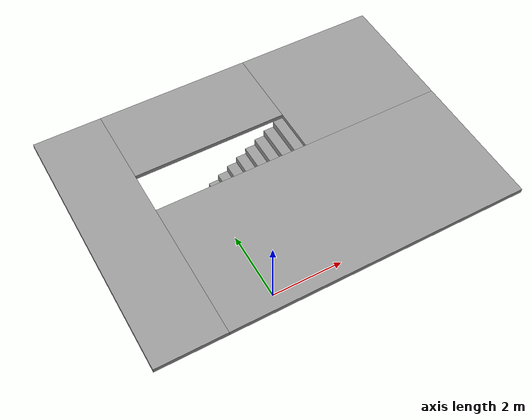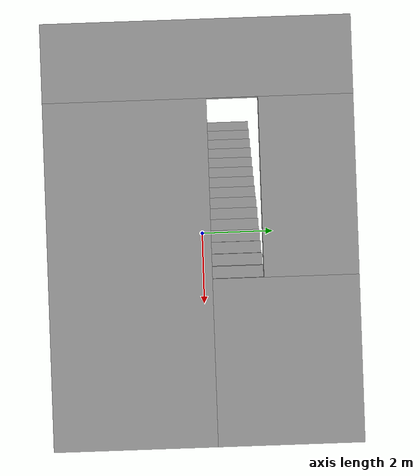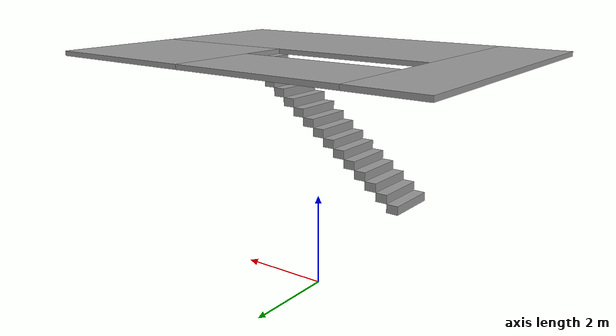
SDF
<sdf version="1.7">
 <model name="simple_building">
  <link name="Floor_2">
   <pose>0.000567 0 5 0 -0 0</pose>
   <visual name="Floor_2_Visual_0">
    <pose>-3.37689 0 0.05 0 -0 0</pose>
    <geometry><box><size>1.53518 6.02293 0.1</size></box></geometry>
    <material>
     <script><uri>file://media/materials/scripts/gazebo.material</uri><name>Gazebo/Grey</name></script>
     <ambient>1 1 1 1</ambient>
     <shader type="pixel"/>
    </material>
   </visual>
   <visual name="Floor_2_Visual_1">
    <pose>0.767592 -1.4216 0.05 0 -0 0</pose>
    <geometry><box><size>6.75378 3.17973 0.1</size></box></geometry>
    <material>
     <script><uri>file://media/materials/scripts/gazebo.material</uri><name>Gazebo/Grey</name></script>
     <ambient>1 1 1 1</ambient>
     <shader type="pixel"/>
    </material>
   </visual>
   <visual name="Floor_2_Visual_2">
    <pose>2.51759 1.58986 0.05 0 -0 0</pose>
    <geometry><box><size>3.25378 2.8432 0.1</size></box></geometry>
    <material>
     <script><uri>file://media/materials/scripts/gazebo.material</uri><name>Gazebo/Grey</name></script>
     <ambient>1 1 1 1</ambient>
     <shader type="pixel"/>
    </material>
   </visual>
   <visual name="Floor_2_Visual_3">
    <pose>-0.859299 2.08986 0.05 0 -0 0</pose>
    <geometry><box><size>3.5 1.8432 0.1</size></box></geometry>
    <material>
     <script><uri>file://media/materials/scripts/gazebo.material</uri><name>Gazebo/Grey</name></script>
     <ambient>1 1 1 1</ambient>
     <shader type="pixel"/>
    </material>
   </visual>
   <collision name="Floor_2_Collision_0">
    <pose>-3.37689 0 0.05 0 -0 0</pose>
    <geometry><box><size>1.53518 6.02293 0.1</size></box></geometry>
    <surface>
     <friction>
      <ode><mu>1</mu><mu2>1</mu2><fdir1>0 0 0</fdir1><slip1>0</slip1><slip2>0</slip2></ode>
      <torsional>
       <coefficient>1</coefficient>
       <patch_radius>0</patch_radius>
       <surface_radius>0</surface_radius>
       <use_patch_radius>1</use_patch_radius>
       <ode><slip>0</slip></ode>
      </torsional>
     </friction>
     <bounce><restitution_coefficient>0</restitution_coefficient><threshold>1e+06</threshold></bounce>
     <contact>
      <collide_without_contact>0</collide_without_contact>
      <collide_without_contact_bitmask>1</collide_without_contact_bitmask>
      <collide_bitmask>1</collide_bitmask>
      <ode>
       <soft_cfm>0</soft_cfm>
       <soft_erp>0.2</soft_erp>
       <kp>1e+13</kp>
       <kd>1</kd>
       <max_vel>0.01</max_vel>
       <min_depth>0</min_depth>
      </ode>
      <bullet>
       <split_impulse>1</split_impulse>
       <split_impulse_penetration_threshold>-0.01</split_impulse_penetration_threshold>
       <soft_cfm>0</soft_cfm>
       <soft_erp>0.2</soft_erp>
       <kp>1e+13</kp>
       <kd>1</kd>
      </bullet>
     </contact>
    </surface>
   </collision>
   <collision name="Floor_2_Collision_1">
    <pose>0.767592 -1.4216 0.05 0 -0 0</pose>
    <geometry><box><size>6.75378 3.17973 0.1</size></box></geometry>
    <surface>
     <friction>
      <ode><mu>1</mu><mu2>1</mu2><fdir1>0 0 0</fdir1><slip1>0</slip1><slip2>0</slip2></ode>
      <torsional>
       <coefficient>1</coefficient>
       <patch_radius>0</patch_radius>
       <surface_radius>0</surface_radius>
       <use_patch_radius>1</use_patch_radius>
       <ode><slip>0</slip></ode>
      </torsional>
     </friction>
     <bounce><restitution_coefficient>0</restitution_coefficient><threshold>1e+06</threshold></bounce>
     <contact>
      <collide_without_contact>0</collide_without_contact>
      <collide_without_contact_bitmask>1</collide_without_contact_bitmask>
      <collide_bitmask>1</collide_bitmask>
      <ode>
       <soft_cfm>0</soft_cfm>
       <soft_erp>0.2</soft_erp>
       <kp>1e+13</kp>
       <kd>1</kd>
       <max_vel>0.01</max_vel>
       <min_depth>0</min_depth>
      </ode>
      <bullet>
       <split_impulse>1</split_impulse>
       <split_impulse_penetration_threshold>-0.01</split_impulse_penetration_threshold>
       <soft_cfm>0</soft_cfm>
       <soft_erp>0.2</soft_erp>
       <kp>1e+13</kp>
       <kd>1</kd>
      </bullet>
     </contact>
    </surface>
   </collision>
   <collision name="Floor_2_Collision_2">
    <pose>2.51759 1.58986 0.05 0 -0 0</pose>
    <geometry><box><size>3.25378 2.8432 0.1</size></box></geometry>
    <surface>
     <friction>
      <ode><mu>1</mu><mu2>1</mu2><fdir1>0 0 0</fdir1><slip1>0</slip1><slip2>0</slip2></ode>
      <torsional>
       <coefficient>1</coefficient>
       <patch_radius>0</patch_radius>
       <surface_radius>0</surface_radius>
       <use_patch_radius>1</use_patch_radius>
       <ode><slip>0</slip></ode>
      </torsional>
     </friction>
     <bounce><restitution_coefficient>0</restitution_coefficient><threshold>1e+06</threshold></bounce>
     <contact>
      <collide_without_contact>0</collide_without_contact>
      <collide_without_contact_bitmask>1</collide_without_contact_bitmask>
      <collide_bitmask>1</collide_bitmask>
      <ode>
       <soft_cfm>0</soft_cfm>
       <soft_erp>0.2</soft_erp>
       <kp>1e+13</kp>
       <kd>1</kd>
       <max_vel>0.01</max_vel>
       <min_depth>0</min_depth>
      </ode>
      <bullet>
       <split_impulse>1</split_impulse>
       <split_impulse_penetration_threshold>-0.01</split_impulse_penetration_threshold>
       <soft_cfm>0</soft_cfm>
       <soft_erp>0.2</soft_erp>
       <kp>1e+13</kp>
       <kd>1</kd>
      </bullet>
     </contact>
    </surface>
   </collision>
   <collision name="Floor_2_Collision_3">
    <pose>-0.859299 2.08986 0.05 0 -0 0</pose>
    <geometry><box><size>3.5 1.8432 0.1</size></box></geometry>
    <surface>
     <friction>
      <ode><mu>1</mu><mu2>1</mu2><fdir1>0 0 0</fdir1><slip1>0</slip1><slip2>0</slip2></ode>
      <torsional>
       <coefficient>1</coefficient>
       <patch_radius>0</patch_radius>
       <surface_radius>0</surface_radius>
       <use_patch_radius>1</use_patch_radius>
       <ode><slip>0</slip></ode>
      </torsional>
     </friction>
     <bounce><restitution_coefficient>0</restitution_coefficient><threshold>1e+06</threshold></bounce>
     <contact>
      <collide_without_contact>0</collide_without_contact>
      <collide_without_contact_bitmask>1</collide_without_contact_bitmask>
      <collide_bitmask>1</collide_bitmask>
      <ode>
       <soft_cfm>0</soft_cfm>
       <soft_erp>0.2</soft_erp>
       <kp>1e+13</kp>
       <kd>1</kd>
       <max_vel>0.01</max_vel>
       <min_depth>0</min_depth>
      </ode>
      <bullet>
       <split_impulse>1</split_impulse>
       <split_impulse_penetration_threshold>-0.01</split_impulse_penetration_threshold>
       <soft_cfm>0</soft_cfm>
       <soft_erp>0.2</soft_erp>
       <kp>1e+13</kp>
       <kd>1</kd>
      </bullet>
     </contact>
    </surface>
   </collision>
  </link>
  <link name="Stairs_3">
   <visual name="Stairs_3_Visual_0">
    <pose>-2.49207 0.668263 2.58333 0 -0 1.5708</pose>
    <geometry><box><size>1 0.233333 0.166667</size></box></geometry>
    <material>
     <script><uri>file://media/materials/scripts/gazebo.material</uri><name>Gazebo/Grey</name></script>
     <ambient>1 1 1 1</ambient>
     <shader type="pixel"/>
    </material>
   </visual>
   <visual name="Stairs_3_Visual_1">
    <pose>-2.25873 0.668263 2.75 0 -0 1.5708</pose>
    <geometry><box><size>1 0.233333 0.166667</size></box></geometry>
    <material>
     <script><uri>file://media/materials/scripts/gazebo.material</uri><name>Gazebo/Grey</name></script>
     <ambient>1 1 1 1</ambient>
     <shader type="pixel"/>
    </material>
   </visual>
   <visual name="Stairs_3_Visual_2">
    <pose>-2.0254 0.668263 2.91667 0 -0 1.5708</pose>
    <geometry><box><size>1 0.233333 0.166667</size></box></geometry>
    <material>
     <script><uri>file://media/materials/scripts/gazebo.material</uri><name>Gazebo/Grey</name></script>
     <ambient>1 1 1 1</ambient>
     <shader type="pixel"/>
    </material>
   </visual>
   <visual name="Stairs_3_Visual_3">
    <pose>-1.79207 0.668263 3.08333 0 -0 1.5708</pose>
    <geometry><box><size>1 0.233333 0.166667</size></box></geometry>
    <material>
     <script><uri>file://media/materials/scripts/gazebo.material</uri><name>Gazebo/Grey</name></script>
     <ambient>1 1 1 1</ambient>
     <shader type="pixel"/>
    </material>
   </visual>
   <visual name="Stairs_3_Visual_4">
    <pose>-1.55873 0.668264 3.25 0 -0 1.5708</pose>
    <geometry><box><size>1 0.233333 0.166667</size></box></geometry>
    <material>
     <script><uri>file://media/materials/scripts/gazebo.material</uri><name>Gazebo/Grey</name></script>
     <ambient>1 1 1 1</ambient>
     <shader type="pixel"/>
    </material>
   </visual>
   <visual name="Stairs_3_Visual_5">
    <pose>-1.3254 0.668264 3.41667 0 -0 1.5708</pose>
    <geometry><box><size>1 0.233333 0.166667</size></box></geometry>
    <material>
     <script><uri>file://media/materials/scripts/gazebo.material</uri><name>Gazebo/Grey</name></script>
     <ambient>1 1 1 1</ambient>
     <shader type="pixel"/>
    </material>
   </visual>
   <visual name="Stairs_3_Visual_6">
    <pose>-1.09207 0.668264 3.58333 0 -0 1.5708</pose>
    <geometry><box><size>1 0.233333 0.166667</size></box></geometry>
    <material>
     <script><uri>file://media/materials/scripts/gazebo.material</uri><name>Gazebo/Grey</name></script>
     <ambient>1 1 1 1</ambient>
     <shader type="pixel"/>
    </material>
   </visual>
   <visual name="Stairs_3_Visual_7">
    <pose>-0.858732 0.668264 3.75 0 -0 1.5708</pose>
    <geometry><box><size>1 0.233333 0.166667</size></box></geometry>
    <material>
     <script><uri>file://media/materials/scripts/gazebo.material</uri><name>Gazebo/Grey</name></script>
     <ambient>1 1 1 1</ambient>
     <shader type="pixel"/>
    </material>
   </visual>
   <visual name="Stairs_3_Visual_8">
    <pose>-0.625398 0.668264 3.91667 0 -0 1.5708</pose>
    <geometry><box><size>1 0.233333 0.166667</size></box></geometry>
    <material>
     <script><uri>file://media/materials/scripts/gazebo.material</uri><name>Gazebo/Grey</name></script>
     <ambient>1 1 1 1</ambient>
     <shader type="pixel"/>
    </material>
   </visual>
   <visual name="Stairs_3_Visual_9">
    <pose>-0.392065 0.668264 4.08333 0 -0 1.5708</pose>
    <geometry><box><size>1 0.233333 0.166667</size></box></geometry>
    <material>
     <script><uri>file://media/materials/scripts/gazebo.material</uri><name>Gazebo/Grey</name></script>
     <ambient>1 1 1 1</ambient>
     <shader type="pixel"/>
    </material>
   </visual>
   <visual name="Stairs_3_Visual_10">
    <pose>-0.158731 0.668264 4.25 0 -0 1.5708</pose>
    <geometry><box><size>1 0.233333 0.166667</size></box></geometry>
    <material>
     <script><uri>file://media/materials/scripts/gazebo.material</uri><name>Gazebo/Grey</name></script>
     <ambient>1 1 1 1</ambient>
     <shader type="pixel"/>
    </material>
   </visual>
   <visual name="Stairs_3_Visual_11">
    <pose>0.074602 0.668264 4.41667 0 -0 1.5708</pose>
    <geometry><box><size>1 0.233333 0.166667</size></box></geometry>
    <material>
     <script><uri>file://media/materials/scripts/gazebo.material</uri><name>Gazebo/Grey</name></script>
     <ambient>1 1 1 1</ambient>
     <shader type="pixel"/>
    </material>
   </visual>
   <visual name="Stairs_3_Visual_12">
    <pose>0.307935 0.668264 4.58333 0 -0 1.5708</pose>
    <geometry><box><size>1 0.233333 0.166667</size></box></geometry>
    <material>
     <script><uri>file://media/materials/scripts/gazebo.material</uri><name>Gazebo/Grey</name></script>
     <ambient>1 1 1 1</ambient>
     <shader type="pixel"/>
    </material>
   </visual>
   <visual name="Stairs_3_Visual_13">
    <pose>0.541269 0.668264 4.75 0 -0 1.5708</pose>
    <geometry><box><size>1 0.233333 0.166667</size></box></geometry>
    <material>
     <script><uri>file://media/materials/scripts/gazebo.material</uri><name>Gazebo/Grey</name></script>
     <ambient>1 1 1 1</ambient>
     <shader type="pixel"/>
    </material>
   </visual>
   <visual name="Stairs_3_Visual_14">
    <pose>0.774602 0.668264 4.91667 0 -0 1.5708</pose>
    <geometry><box><size>1 0.233333 0.166667</size></box></geometry>
    <material>
     <script><uri>file://media/materials/scripts/gazebo.material</uri><name>Gazebo/Grey</name></script>
     <ambient>1 1 1 1</ambient>
     <shader type="pixel"/>
    </material>
   </visual>
   <collision name="Stairs_3_Collision_0">
    <pose>-2.49207 0.668263 2.58333 0 -0 1.5708</pose>
    <geometry><box><size>1 0.233333 0.166667</size></box></geometry>
    <surface>
     <friction>
      <ode><mu>1</mu><mu2>1</mu2><fdir1>0 0 0</fdir1><slip1>0</slip1><slip2>0</slip2></ode>
      <torsional>
       <coefficient>1</coefficient>
       <patch_radius>0</patch_radius>
       <surface_radius>0</surface_radius>
       <use_patch_radius>1</use_patch_radius>
       <ode><slip>0</slip></ode>
      </torsional>
     </friction>
     <bounce><restitution_coefficient>0</restitution_coefficient><threshold>1e+06</threshold></bounce>
     <contact>
      <collide_without_contact>0</collide_without_contact>
      <collide_without_contact_bitmask>1</collide_without_contact_bitmask>
      <collide_bitmask>1</collide_bitmask>
      <ode>
       <soft_cfm>0</soft_cfm>
       <soft_erp>0.2</soft_erp>
       <kp>1e+13</kp>
       <kd>1</kd>
       <max_vel>0.01</max_vel>
       <min_depth>0</min_depth>
      </ode>
      <bullet>
       <split_impulse>1</split_impulse>
       <split_impulse_penetration_threshold>-0.01</split_impulse_penetration_threshold>
       <soft_cfm>0</soft_cfm>
       <soft_erp>0.2</soft_erp>
       <kp>1e+13</kp>
       <kd>1</kd>
      </bullet>
     </contact>
    </surface>
   </collision>
   <collision name="Stairs_3_Collision_1">
    <pose>-2.25873 0.668263 2.75 0 -0 1.5708</pose>
    <geometry><box><size>1 0.233333 0.166667</size></box></geometry>
    <surface>
     <friction>
      <ode><mu>1</mu><mu2>1</mu2><fdir1>0 0 0</fdir1><slip1>0</slip1><slip2>0</slip2></ode>
      <torsional>
       <coefficient>1</coefficient>
       <patch_radius>0</patch_radius>
       <surface_radius>0</surface_radius>
       <use_patch_radius>1</use_patch_radius>
       <ode><slip>0</slip></ode>
      </torsional>
     </friction>
     <bounce><restitution_coefficient>0</restitution_coefficient><threshold>1e+06</threshold></bounce>
     <contact>
      <collide_without_contact>0</collide_without_contact>
      <collide_without_contact_bitmask>1</collide_without_contact_bitmask>
      <collide_bitmask>1</collide_bitmask>
      <ode>
       <soft_cfm>0</soft_cfm>
       <soft_erp>0.2</soft_erp>
       <kp>1e+13</kp>
       <kd>1</kd>
       <max_vel>0.01</max_vel>
       <min_depth>0</min_depth>
      </ode>
      <bullet>
       <split_impulse>1</split_impulse>
       <split_impulse_penetration_threshold>-0.01</split_impulse_penetration_threshold>
       <soft_cfm>0</soft_cfm>
       <soft_erp>0.2</soft_erp>
       <kp>1e+13</kp>
       <kd>1</kd>
      </bullet>
     </contact>
    </surface>
   </collision>
   <collision name="Stairs_3_Collision_2">
    <pose>-2.0254 0.668263 2.91667 0 -0 1.5708</pose>
    <geometry><box><size>1 0.233333 0.166667</size></box></geometry>
    <surface>
     <friction>
      <ode><mu>1</mu><mu2>1</mu2><fdir1>0 0 0</fdir1><slip1>0</slip1><slip2>0</slip2></ode>
      <torsional>
       <coefficient>1</coefficient>
       <patch_radius>0</patch_radius>
       <surface_radius>0</surface_radius>
       <use_patch_radius>1</use_patch_radius>
       <ode><slip>0</slip></ode>
      </torsional>
     </friction>
     <bounce><restitution_coefficient>0</restitution_coefficient><threshold>1e+06</threshold></bounce>
     <contact>
      <collide_without_contact>0</collide_without_contact>
      <collide_without_contact_bitmask>1</collide_without_contact_bitmask>
      <collide_bitmask>1</collide_bitmask>
      <ode>
       <soft_cfm>0</soft_cfm>
       <soft_erp>0.2</soft_erp>
       <kp>1e+13</kp>
       <kd>1</kd>
       <max_vel>0.01</max_vel>
       <min_depth>0</min_depth>
      </ode>
      <bullet>
       <split_impulse>1</split_impulse>
       <split_impulse_penetration_threshold>-0.01</split_impulse_penetration_threshold>
       <soft_cfm>0</soft_cfm>
       <soft_erp>0.2</soft_erp>
       <kp>1e+13</kp>
       <kd>1</kd>
      </bullet>
     </contact>
    </surface>
   </collision>
   <collision name="Stairs_3_Collision_3">
    <pose>-1.79207 0.668263 3.08333 0 -0 1.5708</pose>
    <geometry><box><size>1 0.233333 0.166667</size></box></geometry>
    <surface>
     <friction>
      <ode><mu>1</mu><mu2>1</mu2><fdir1>0 0 0</fdir1><slip1>0</slip1><slip2>0</slip2></ode>
      <torsional>
       <coefficient>1</coefficient>
       <patch_radius>0</patch_radius>
       <surface_radius>0</surface_radius>
       <use_patch_radius>1</use_patch_radius>
       <ode><slip>0</slip></ode>
      </torsional>
     </friction>
     <bounce><restitution_coefficient>0</restitution_coefficient><threshold>1e+06</threshold></bounce>
     <contact>
      <collide_without_contact>0</collide_without_contact>
      <collide_without_contact_bitmask>1</collide_without_contact_bitmask>
      <collide_bitmask>1</collide_bitmask>
      <ode>
       <soft_cfm>0</soft_cfm>
       <soft_erp>0.2</soft_erp>
       <kp>1e+13</kp>
       <kd>1</kd>
       <max_vel>0.01</max_vel>
       <min_depth>0</min_depth>
      </ode>
      <bullet>
       <split_impulse>1</split_impulse>
       <split_impulse_penetration_threshold>-0.01</split_impulse_penetration_threshold>
       <soft_cfm>0</soft_cfm>
       <soft_erp>0.2</soft_erp>
       <kp>1e+13</kp>
       <kd>1</kd>
      </bullet>
     </contact>
    </surface>
   </collision>
   <collision name="Stairs_3_Collision_4">
    <pose>-1.55873 0.668264 3.25 0 -0 1.5708</pose>
    <geometry><box><size>1 0.233333 0.166667</size></box></geometry>
    <surface>
     <friction>
      <ode><mu>1</mu><mu2>1</mu2><fdir1>0 0 0</fdir1><slip1>0</slip1><slip2>0</slip2></ode>
      <torsional>
       <coefficient>1</coefficient>
       <patch_radius>0</patch_radius>
       <surface_radius>0</surface_radius>
       <use_patch_radius>1</use_patch_radius>
       <ode><slip>0</slip></ode>
      </torsional>
     </friction>
     <bounce><restitution_coefficient>0</restitution_coefficient><threshold>1e+06</threshold></bounce>
     <contact>
      <collide_without_contact>0</collide_without_contact>
      <collide_without_contact_bitmask>1</collide_without_contact_bitmask>
      <collide_bitmask>1</collide_bitmask>
      <ode>
       <soft_cfm>0</soft_cfm>
       <soft_erp>0.2</soft_erp>
       <kp>1e+13</kp>
       <kd>1</kd>
       <max_vel>0.01</max_vel>
       <min_depth>0</min_depth>
      </ode>
      <bullet>
       <split_impulse>1</split_impulse>
       <split_impulse_penetration_threshold>-0.01</split_impulse_penetration_threshold>
       <soft_cfm>0</soft_cfm>
       <soft_erp>0.2</soft_erp>
       <kp>1e+13</kp>
       <kd>1</kd>
      </bullet>
     </contact>
    </surface>
   </collision>
   <collision name="Stairs_3_Collision_5">
    <pose>-1.3254 0.668264 3.41667 0 -0 1.5708</pose>
    <geometry><box><size>1 0.233333 0.166667</size></box></geometry>
    <surface>
     <friction>
      <ode><mu>1</mu><mu2>1</mu2><fdir1>0 0 0</fdir1><slip1>0</slip1><slip2>0</slip2></ode>
      <torsional>
       <coefficient>1</coefficient>
       <patch_radius>0</patch_radius>
       <surface_radius>0</surface_radius>
       <use_patch_radius>1</use_patch_radius>
       <ode><slip>0</slip></ode>
      </torsional>
     </friction>
     <bounce><restitution_coefficient>0</restitution_coefficient><threshold>1e+06</threshold></bounce>
     <contact>
      <collide_without_contact>0</collide_without_contact>
      <collide_without_contact_bitmask>1</collide_without_contact_bitmask>
      <collide_bitmask>1</collide_bitmask>
      <ode>
       <soft_cfm>0</soft_cfm>
       <soft_erp>0.2</soft_erp>
       <kp>1e+13</kp>
       <kd>1</kd>
       <max_vel>0.01</max_vel>
       <min_depth>0</min_depth>
      </ode>
      <bullet>
       <split_impulse>1</split_impulse>
       <split_impulse_penetration_threshold>-0.01</split_impulse_penetration_threshold>
       <soft_cfm>0</soft_cfm>
       <soft_erp>0.2</soft_erp>
       <kp>1e+13</kp>
       <kd>1</kd>
      </bullet>
     </contact>
    </surface>
   </collision>
   <collision name="Stairs_3_Collision_6">
    <pose>-1.09207 0.668264 3.58333 0 -0 1.5708</pose>
    <geometry><box><size>1 0.233333 0.166667</size></box></geometry>
    <surface>
     <friction>
      <ode><mu>1</mu><mu2>1</mu2><fdir1>0 0 0</fdir1><slip1>0</slip1><slip2>0</slip2></ode>
      <torsional>
       <coefficient>1</coefficient>
       <patch_radius>0</patch_radius>
       <surface_radius>0</surface_radius>
       <use_patch_radius>1</use_patch_radius>
       <ode><slip>0</slip></ode>
      </torsional>
     </friction>
     <bounce><restitution_coefficient>0</restitution_coefficient><threshold>1e+06</threshold></bounce>
     <contact>
      <collide_without_contact>0</collide_without_contact>
      <collide_without_contact_bitmask>1</collide_without_contact_bitmask>
      <collide_bitmask>1</collide_bitmask>
      <ode>
       <soft_cfm>0</soft_cfm>
       <soft_erp>0.2</soft_erp>
       <kp>1e+13</kp>
       <kd>1</kd>
       <max_vel>0.01</max_vel>
       <min_depth>0</min_depth>
      </ode>
      <bullet>
       <split_impulse>1</split_impulse>
       <split_impulse_penetration_threshold>-0.01</split_impulse_penetration_threshold>
       <soft_cfm>0</soft_cfm>
       <soft_erp>0.2</soft_erp>
       <kp>1e+13</kp>
       <kd>1</kd>
      </bullet>
     </contact>
    </surface>
   </collision>
   <collision name="Stairs_3_Collision_7">
    <pose>-0.858732 0.668264 3.75 0 -0 1.5708</pose>
    <geometry><box><size>1 0.233333 0.166667</size></box></geometry>
    <surface>
     <friction>
      <ode><mu>1</mu><mu2>1</mu2><fdir1>0 0 0</fdir1><slip1>0</slip1><slip2>0</slip2></ode>
      <torsional>
       <coefficient>1</coefficient>
       <patch_radius>0</patch_radius>
       <surface_radius>0</surface_radius>
       <use_patch_radius>1</use_patch_radius>
       <ode><slip>0</slip></ode>
      </torsional>
     </friction>
     <bounce><restitution_coefficient>0</restitution_coefficient><threshold>1e+06</threshold></bounce>
     <contact>
      <collide_without_contact>0</collide_without_contact>
      <collide_without_contact_bitmask>1</collide_without_contact_bitmask>
      <collide_bitmask>1</collide_bitmask>
      <ode>
       <soft_cfm>0</soft_cfm>
       <soft_erp>0.2</soft_erp>
       <kp>1e+13</kp>
       <kd>1</kd>
       <max_vel>0.01</max_vel>
       <min_depth>0</min_depth>
      </ode>
      <bullet>
       <split_impulse>1</split_impulse>
       <split_impulse_penetration_threshold>-0.01</split_impulse_penetration_threshold>
       <soft_cfm>0</soft_cfm>
       <soft_erp>0.2</soft_erp>
       <kp>1e+13</kp>
       <kd>1</kd>
      </bullet>
     </contact>
    </surface>
   </collision>
   <collision name="Stairs_3_Collision_8">
    <pose>-0.625398 0.668264 3.91667 0 -0 1.5708</pose>
    <geometry><box><size>1 0.233333 0.166667</size></box></geometry>
    <surface>
     <friction>
      <ode><mu>1</mu><mu2>1</mu2><fdir1>0 0 0</fdir1><slip1>0</slip1><slip2>0</slip2></ode>
      <torsional>
       <coefficient>1</coefficient>
       <patch_radius>0</patch_radius>
       <surface_radius>0</surface_radius>
       <use_patch_radius>1</use_patch_radius>
       <ode><slip>0</slip></ode>
      </torsional>
     </friction>
     <bounce><restitution_coefficient>0</restitution_coefficient><threshold>1e+06</threshold></bounce>
     <contact>
      <collide_without_contact>0</collide_without_contact>
      <collide_without_contact_bitmask>1</collide_without_contact_bitmask>
      <collide_bitmask>1</collide_bitmask>
      <ode>
       <soft_cfm>0</soft_cfm>
       <soft_erp>0.2</soft_erp>
       <kp>1e+13</kp>
       <kd>1</kd>
       <max_vel>0.01</max_vel>
       <min_depth>0</min_depth>
      </ode>
      <bullet>
       <split_impulse>1</split_impulse>
       <split_impulse_penetration_threshold>-0.01</split_impulse_penetration_threshold>
       <soft_cfm>0</soft_cfm>
       <soft_erp>0.2</soft_erp>
       <kp>1e+13</kp>
       <kd>1</kd>
      </bullet>
     </contact>
    </surface>
   </collision>
   <collision name="Stairs_3_Collision_9">
    <pose>-0.392065 0.668264 4.08333 0 -0 1.5708</pose>
    <geometry><box><size>1 0.233333 0.166667</size></box></geometry>
    <surface>
     <friction>
      <ode><mu>1</mu><mu2>1</mu2><fdir1>0 0 0</fdir1><slip1>0</slip1><slip2>0</slip2></ode>
      <torsional>
       <coefficient>1</coefficient>
       <patch_radius>0</patch_radius>
       <surface_radius>0</surface_radius>
       <use_patch_radius>1</use_patch_radius>
       <ode><slip>0</slip></ode>
      </torsional>
     </friction>
     <bounce><restitution_coefficient>0</restitution_coefficient><threshold>1e+06</threshold></bounce>
     <contact>
      <collide_without_contact>0</collide_without_contact>
      <collide_without_contact_bitmask>1</collide_without_contact_bitmask>
      <collide_bitmask>1</collide_bitmask>
      <ode>
       <soft_cfm>0</soft_cfm>
       <soft_erp>0.2</soft_erp>
       <kp>1e+13</kp>
       <kd>1</kd>
       <max_vel>0.01</max_vel>
       <min_depth>0</min_depth>
      </ode>
      <bullet>
       <split_impulse>1</split_impulse>
       <split_impulse_penetration_threshold>-0.01</split_impulse_penetration_threshold>
       <soft_cfm>0</soft_cfm>
       <soft_erp>0.2</soft_erp>
       <kp>1e+13</kp>
       <kd>1</kd>
      </bullet>
     </contact>
    </surface>
   </collision>
   <collision name="Stairs_3_Collision_10">
    <pose>-0.158731 0.668264 4.25 0 -0 1.5708</pose>
    <geometry><box><size>1 0.233333 0.166667</size></box></geometry>
    <surface>
     <friction>
      <ode><mu>1</mu><mu2>1</mu2><fdir1>0 0 0</fdir1><slip1>0</slip1><slip2>0</slip2></ode>
      <torsional>
       <coefficient>1</coefficient>
       <patch_radius>0</patch_radius>
       <surface_radius>0</surface_radius>
       <use_patch_radius>1</use_patch_radius>
       <ode><slip>0</slip></ode>
      </torsional>
     </friction>
     <bounce><restitution_coefficient>0</restitution_coefficient><threshold>1e+06</threshold></bounce>
     <contact>
      <collide_without_contact>0</collide_without_contact>
      <collide_without_contact_bitmask>1</collide_without_contact_bitmask>
      <collide_bitmask>1</collide_bitmask>
      <ode>
       <soft_cfm>0</soft_cfm>
       <soft_erp>0.2</soft_erp>
       <kp>1e+13</kp>
       <kd>1</kd>
       <max_vel>0.01</max_vel>
       <min_depth>0</min_depth>
      </ode>
      <bullet>
       <split_impulse>1</split_impulse>
       <split_impulse_penetration_threshold>-0.01</split_impulse_penetration_threshold>
       <soft_cfm>0</soft_cfm>
       <soft_erp>0.2</soft_erp>
       <kp>1e+13</kp>
       <kd>1</kd>
      </bullet>
     </contact>
    </surface>
   </collision>
   <collision name="Stairs_3_Collision_11">
    <pose>0.074602 0.668264 4.41667 0 -0 1.5708</pose>
    <geometry><box><size>1 0.233333 0.166667</size></box></geometry>
    <surface>
     <friction>
      <ode><mu>1</mu><mu2>1</mu2><fdir1>0 0 0</fdir1><slip1>0</slip1><slip2>0</slip2></ode>
      <torsional>
       <coefficient>1</coefficient>
       <patch_radius>0</patch_radius>
       <surface_radius>0</surface_radius>
       <use_patch_radius>1</use_patch_radius>
       <ode><slip>0</slip></ode>
      </torsional>
     </friction>
     <bounce><restitution_coefficient>0</restitution_coefficient><threshold>1e+06</threshold></bounce>
     <contact>
      <collide_without_contact>0</collide_without_contact>
      <collide_without_contact_bitmask>1</collide_without_contact_bitmask>
      <collide_bitmask>1</collide_bitmask>
      <ode>
       <soft_cfm>0</soft_cfm>
       <soft_erp>0.2</soft_erp>
       <kp>1e+13</kp>
       <kd>1</kd>
       <max_vel>0.01</max_vel>
       <min_depth>0</min_depth>
      </ode>
      <bullet>
       <split_impulse>1</split_impulse>
       <split_impulse_penetration_threshold>-0.01</split_impulse_penetration_threshold>
       <soft_cfm>0</soft_cfm>
       <soft_erp>0.2</soft_erp>
       <kp>1e+13</kp>
       <kd>1</kd>
      </bullet>
     </contact>
    </surface>
   </collision>
   <collision name="Stairs_3_Collision_12">
    <pose>0.307935 0.668264 4.58333 0 -0 1.5708</pose>
    <geometry><box><size>1 0.233333 0.166667</size></box></geometry>
    <surface>
     <friction>
      <ode><mu>1</mu><mu2>1</mu2><fdir1>0 0 0</fdir1><slip1>0</slip1><slip2>0</slip2></ode>
      <torsional>
       <coefficient>1</coefficient>
       <patch_radius>0</patch_radius>
       <surface_radius>0</surface_radius>
       <use_patch_radius>1</use_patch_radius>
       <ode><slip>0</slip></ode>
      </torsional>
     </friction>
     <bounce><restitution_coefficient>0</restitution_coefficient><threshold>1e+06</threshold></bounce>
     <contact>
      <collide_without_contact>0</collide_without_contact>
      <collide_without_contact_bitmask>1</collide_without_contact_bitmask>
      <collide_bitmask>1</collide_bitmask>
      <ode>
       <soft_cfm>0</soft_cfm>
       <soft_erp>0.2</soft_erp>
       <kp>1e+13</kp>
       <kd>1</kd>
       <max_vel>0.01</max_vel>
       <min_depth>0</min_depth>
      </ode>
      <bullet>
       <split_impulse>1</split_impulse>
       <split_impulse_penetration_threshold>-0.01</split_impulse_penetration_threshold>
       <soft_cfm>0</soft_cfm>
       <soft_erp>0.2</soft_erp>
       <kp>1e+13</kp>
       <kd>1</kd>
      </bullet>
     </contact>
    </surface>
   </collision>
   <collision name="Stairs_3_Collision_13">
    <pose>0.541269 0.668264 4.75 0 -0 1.5708</pose>
    <geometry><box><size>1 0.233333 0.166667</size></box></geometry>
    <surface>
     <friction>
      <ode><mu>1</mu><mu2>1</mu2><fdir1>0 0 0</fdir1><slip1>0</slip1><slip2>0</slip2></ode>
      <torsional>
       <coefficient>1</coefficient>
       <patch_radius>0</patch_radius>
       <surface_radius>0</surface_radius>
       <use_patch_radius>1</use_patch_radius>
       <ode><slip>0</slip></ode>
      </torsional>
     </friction>
     <bounce><restitution_coefficient>0</restitution_coefficient><threshold>1e+06</threshold></bounce>
     <contact>
      <collide_without_contact>0</collide_without_contact>
      <collide_without_contact_bitmask>1</collide_without_contact_bitmask>
      <collide_bitmask>1</collide_bitmask>
      <ode>
       <soft_cfm>0</soft_cfm>
       <soft_erp>0.2</soft_erp>
       <kp>1e+13</kp>
       <kd>1</kd>
       <max_vel>0.01</max_vel>
       <min_depth>0</min_depth>
      </ode>
      <bullet>
       <split_impulse>1</split_impulse>
       <split_impulse_penetration_threshold>-0.01</split_impulse_penetration_threshold>
       <soft_cfm>0</soft_cfm>
       <soft_erp>0.2</soft_erp>
       <kp>1e+13</kp>
       <kd>1</kd>
      </bullet>
     </contact>
    </surface>
   </collision>
   <collision name="Stairs_3_Collision_14">
    <pose>0.774602 0.668264 4.91667 0 -0 1.5708</pose>
    <geometry><box><size>1 0.233333 0.166667</size></box></geometry>
    <surface>
     <friction>
      <ode><mu>1</mu><mu2>1</mu2><fdir1>0 0 0</fdir1><slip1>0</slip1><slip2>0</slip2></ode>
      <torsional>
       <coefficient>1</coefficient>
       <patch_radius>0</patch_radius>
       <surface_radius>0</surface_radius>
       <use_patch_radius>1</use_patch_radius>
       <ode><slip>0</slip></ode>
      </torsional>
     </friction>
     <bounce><restitution_coefficient>0</restitution_coefficient><threshold>1e+06</threshold></bounce>
     <contact>
      <collide_without_contact>0</collide_without_contact>
      <collide_without_contact_bitmask>1</collide_without_contact_bitmask>
      <collide_bitmask>1</collide_bitmask>
      <ode>
       <soft_cfm>0</soft_cfm>
       <soft_erp>0.2</soft_erp>
       <kp>1e+13</kp>
       <kd>1</kd>
       <max_vel>0.01</max_vel>
       <min_depth>0</min_depth>
      </ode>
      <bullet>
       <split_impulse>1</split_impulse>
       <split_impulse_penetration_threshold>-0.01</split_impulse_penetration_threshold>
       <soft_cfm>0</soft_cfm>
       <soft_erp>0.2</soft_erp>
       <kp>1e+13</kp>
       <kd>1</kd>
      </bullet>
     </contact>
    </surface>
   </collision>
  </link>
  <static>1</static>
 </model>
</sdf>
